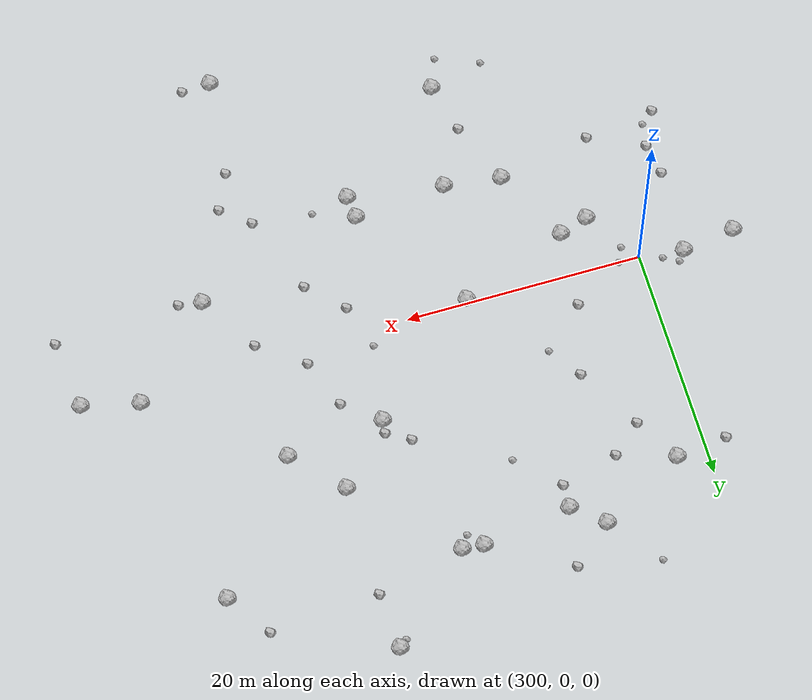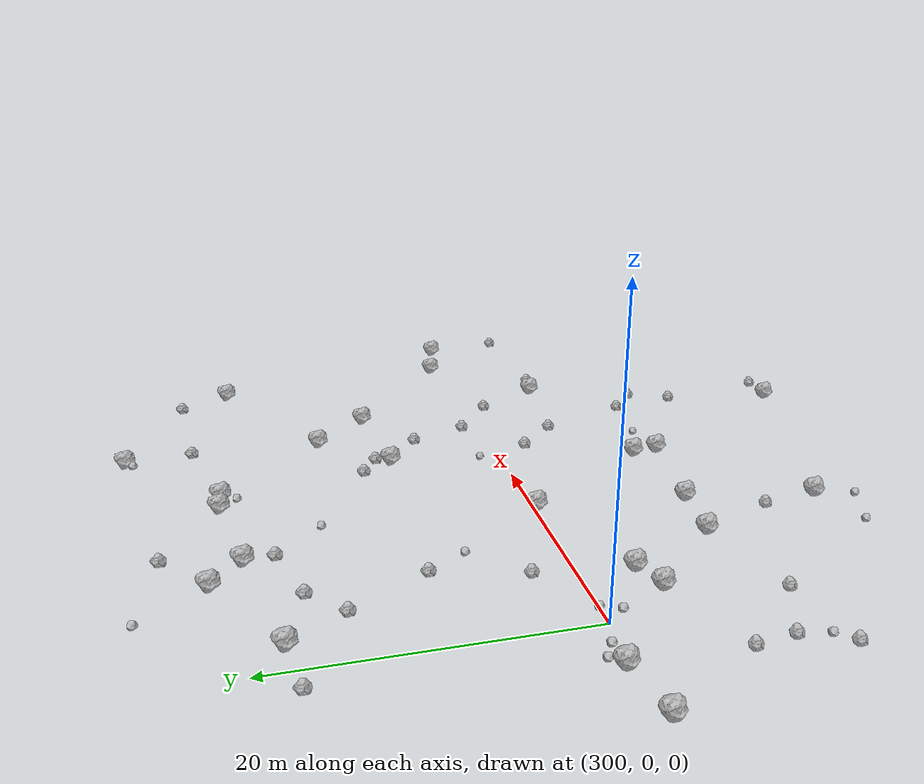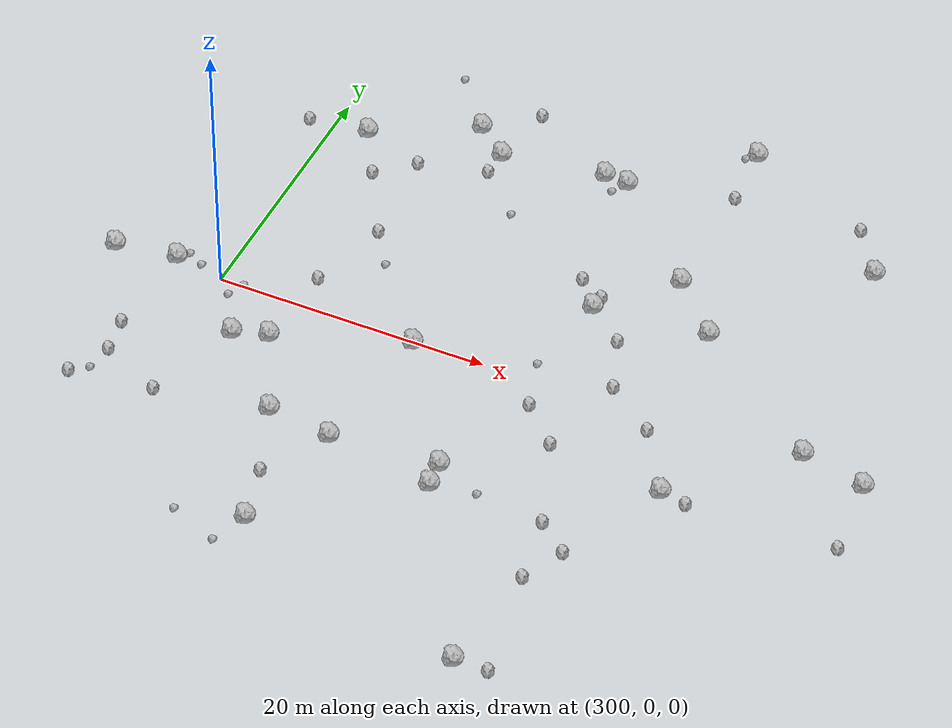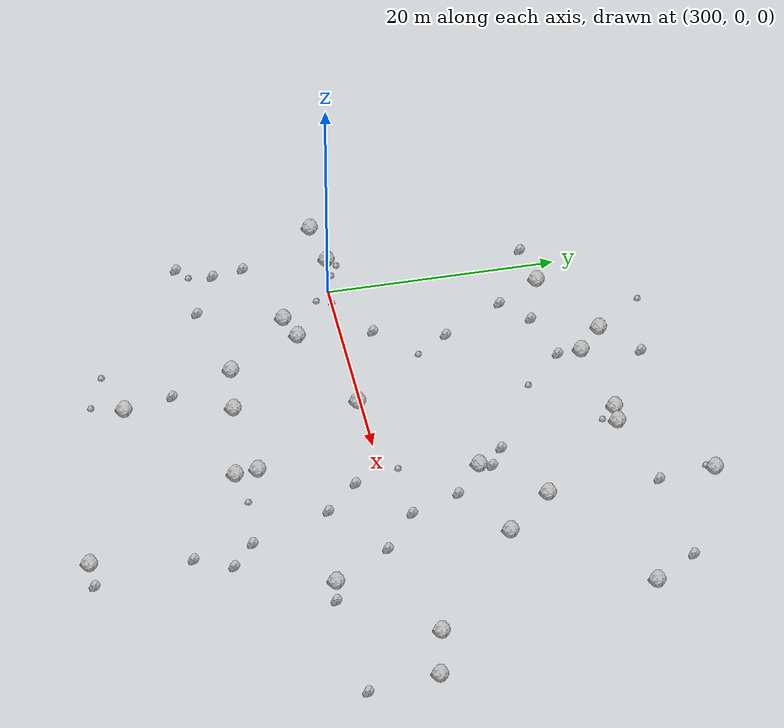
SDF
<sdf version="1.6">
 <world name="default">
  <include><uri>model://sun</uri></include>
  <model name="rock1_8_3">
   <include><uri>model://rock1</uri><pose>328.7525226697824 27.36543919483558 0.5 0 0 0</pose></include>
  </model>
  <model name="rock1_8_4">
   <include><uri>model://rock1</uri><pose>312.25760247349535 19.712532726271412 0.5 0 0 0</pose></include>
  </model>
  <model name="rock1_8_5">
   <include><uri>model://rock1</uri><pose>313.69099243472454 -10.778177490043227 0.5 0 0 0</pose></include>
  </model>
  <model name="rock1_8_6">
   <include><uri>model://rock1</uri><pose>312.0554073598567 -19.862074830195898 0.5 0 0 0</pose></include>
  </model>
  <model name="rock1_8_7">
   <include><uri>model://rock1</uri><pose>309.72758866656113 21.847978776242122 0.5 0 0 0</pose></include>
  </model>
  <model name="rock1_8_8">
   <include><uri>model://rock1</uri><pose>302.5555221199482 17.961124502089312 0.5 0 0 0</pose></include>
  </model>
  <model name="rock1_8_9">
   <include><uri>model://rock1</uri><pose>308.90105733723726 -10.148130658853912 0.5 0 0 0</pose></include>
  </model>
  <model name="rock1_8_10">
   <include><uri>model://rock1</uri><pose>296.32720305272375 0.5320159450699045 0.5 0 0 0</pose></include>
  </model>
  <model name="rock1_8_11">
   <include><uri>model://rock1</uri><pose>303.20617330317515 -4.579489714088471 0.5 0 0 0</pose></include>
  </model>
  <model name="rock1_8_12">
   <include><uri>model://rock1</uri><pose>321.5282426853377 -10.080829302104124 0.5 0 0 0</pose></include>
  </model>
  <model name="rock1_8_13">
   <include><uri>model://rock1</uri><pose>332.8186931897638 9.019796972079114 0.5 0 0 0</pose></include>
  </model>
  <model name="rock1_8_14">
   <include><uri>model://rock1</uri><pose>335.8567266483514 -6.164544657235812 0.5 0 0 0</pose></include>
  </model>
  <model name="rock1_8_15">
   <include><uri>model://rock1</uri><pose>324.55335692456674 8.136058763006474 0.5 0 0 0</pose></include>
  </model>
  <model name="rock1_8_16">
   <include><uri>model://rock1</uri><pose>340.82564656305397 19.477353215208375 0.5 0 0 0</pose></include>
  </model>
  <model name="rock1_8_17">
   <include><uri>model://rock1</uri><pose>329.030962278498 13.035003566273154 0.5 0 0 0</pose></include>
  </model>
  <model name="rock1_8_18">
   <include><uri>model://rock1</uri><pose>347.8215193920061 -0.029096699597133124 0.5 0 0 0</pose></include>
  </model>
  <model name="rock1_8_19">
   <include><uri>model://rock1</uri><pose>291.8323569573878 -0.11460120459746648 0.5 0 0 0</pose></include>
  </model>
  <model name="rock1_8_20">
   <include><uri>model://rock1</uri><pose>319.7869564993545 20.875195371004317 0.5 0 0 0</pose></include>
  </model>
  <model name="rock1_8_21">
   <include><uri>model://rock1</uri><pose>321.5859692984612 20.707019518493716 0.5 0 0 0</pose></include>
  </model>
  <model name="rock1_8_22">
   <include><uri>model://rock1</uri><pose>321.7264414879698 -12.026805740930332 0.5 0 0 0</pose></include>
  </model>
  <model name="rock1_8_23">
   <include><uri>model://rock1</uri><pose>329.8687326442555 -25.52872355941207 0.5 0 0 0</pose></include>
  </model>
  <model name="rock1_8_24">
   <include><uri>model://rock1</uri><pose>314.8733536846659 -0.2888144228845455 0.5 0 0 0</pose></include>
  </model>
  <model name="rock1_8_25">
   <include><uri>model://rock1</uri><pose>305.6555304930693 -3.785182647929325 0.5 0 0 0</pose></include>
  </model>
  <model name="rock1_8_26">
   <include><uri>model://rock1</uri><pose>343.0527776972884 1.093373389161755 0.5 0 0 0</pose></include>
  </model>
  <model name="rock2_8_0">
   <include><uri>model://rock2</uri><pose>327.4078872873129 -5.184535980582897 0.3 0 0 0</pose></include>
  </model>
  <model name="rock2_8_1">
   <include><uri>model://rock2</uri><pose>329.0179750653407 1.5618313858891995 0.3 0 0 0</pose></include>
  </model>
  <model name="rock2_8_2">
   <include><uri>model://rock2</uri><pose>298.18817189460236 17.44298692422013 0.3 0 0 0</pose></include>
  </model>
  <model name="rock2_8_3">
   <include><uri>model://rock2</uri><pose>312.14395094486605 17.70781077478012 0.3 0 0 0</pose></include>
  </model>
  <model name="rock2_8_4">
   <include><uri>model://rock2</uri><pose>306.1665352396996 2.740033179428657 0.3 0 0 0</pose></include>
  </model>
  <model name="rock2_8_5">
   <include><uri>model://rock2</uri><pose>296.3494479222065 -9.577291360956927 0.3 0 0 0</pose></include>
  </model>
  <model name="rock2_8_6">
   <include><uri>model://rock2</uri><pose>294.8845925329541 -12.583056762140906 0.3 0 0 0</pose></include>
  </model>
  <model name="rock2_8_7">
   <include><uri>model://rock2</uri><pose>310.9925277488928 -15.554960067135891 0.3 0 0 0</pose></include>
  </model>
  <model name="rock2_8_8">
   <include><uri>model://rock2</uri><pose>304.7482340472594 14.190524109922826 0.3 0 0 0</pose></include>
  </model>
  <model name="rock2_8_9">
   <include><uri>model://rock2</uri><pose>337.8038661913422 -6.5026093632436925 0.3 0 0 0</pose></include>
  </model>
  <model name="rock2_8_10">
   <include><uri>model://rock2</uri><pose>313.1244232089582 24.771485840809937 0.3 0 0 0</pose></include>
  </model>
  <model name="rock2_8_11">
   <include><uri>model://rock2</uri><pose>295.8928224390083 -6.839121652693205 0.3 0 0 0</pose></include>
  </model>
  <model name="rock2_8_12">
   <include><uri>model://rock2</uri><pose>330.84544231092883 -17.054568996156892 0.3 0 0 0</pose></include>
  </model>
  <model name="rock2_8_13">
   <include><uri>model://rock2</uri><pose>307.2607626561434 16.413910125439287 0.3 0 0 0</pose></include>
  </model>
  <model name="rock2_8_14">
   <include><uri>model://rock2</uri><pose>324.68130943429134 9.268361980006105 0.3 0 0 0</pose></include>
  </model>
  <model name="rock2_8_15">
   <include><uri>model://rock2</uri><pose>327.4547260197089 5.765989458536637 0.3 0 0 0</pose></include>
  </model>
  <model name="rock2_8_16">
   <include><uri>model://rock2</uri><pose>332.3144130180588 -25.452777886865743 0.3 0 0 0</pose></include>
  </model>
  <model name="rock2_8_17">
   <include><uri>model://rock2</uri><pose>332.29670530044655 -13.933113309456221 0.3 0 0 0</pose></include>
  </model>
  <model name="rock2_8_18">
   <include><uri>model://rock2</uri><pose>338.30077372416656 23.192580377711216 0.3 0 0 0</pose></include>
  </model>
  <model name="rock2_8_19">
   <include><uri>model://rock2</uri><pose>332.7443878669386 -1.2278851293125044 0.3 0 0 0</pose></include>
  </model>
  <model name="rock2_8_20">
   <include><uri>model://rock2</uri><pose>348.4168421607831 -5.963558367130876 0.3 0 0 0</pose></include>
  </model>
  <model name="rock2_8_21">
   <include><uri>model://rock2</uri><pose>329.9539680757888 -11.997547243515008 0.3 0 0 0</pose></include>
  </model>
  <model name="rock2_8_22">
   <include><uri>model://rock2</uri><pose>307.8547163568292 8.799474434442672 0.3 0 0 0</pose></include>
  </model>
  <model name="rock2_8_23">
   <include><uri>model://rock2</uri><pose>322.74818839347057 10.436216612547383 0.3 0 0 0</pose></include>
  </model>
  <model name="rock2_8_24">
   <include><uri>model://rock2</uri><pose>329.0464479432485 22.545141509761777 0.3 0 0 0</pose></include>
  </model>
  <model name="rock2_8_25">
   <include><uri>model://rock2</uri><pose>300.9150718834698 -11.717904171419406 0.3 0 0 0</pose></include>
  </model>
  <model name="rock2_8_26">
   <include><uri>model://rock2</uri><pose>324.5754543367765 -2.3590861687436018 0.3 0 0 0</pose></include>
  </model>
  <model name="rock3_8_0">
   <include><uri>model://rock3</uri><pose>309.69553527076494 6.018996052902068 0.2 0 0 0</pose></include>
  </model>
  <model name="rock3_8_1">
   <include><uri>model://rock3</uri><pose>301.7372483900431 -0.013374931742671237 0.2 0 0 0</pose></include>
  </model>
  <model name="rock3_8_2">
   <include><uri>model://rock3</uri><pose>306.3310421614956 26.093679241968076 0.2 0 0 0</pose></include>
  </model>
  <model name="rock3_8_3">
   <include><uri>model://rock3</uri><pose>298.1373043761836 0.6042173045650081 0.2 0 0 0</pose></include>
  </model>
  <model name="rock3_8_4">
   <include><uri>model://rock3</uri><pose>296.89329048761135 1.29266010660794 0.2 0 0 0</pose></include>
  </model>
  <model name="rock3_8_5">
   <include><uri>model://rock3</uri><pose>307.35996307802657 -21.084499266884336 0.2 0 0 0</pose></include>
  </model>
  <model name="rock3_8_6">
   <include><uri>model://rock3</uri><pose>301.17450586342983 -1.271032412931664 0.2 0 0 0</pose></include>
  </model>
  <model name="rock3_8_7">
   <include><uri>model://rock3</uri><pose>320.80890495707894 19.59473989726861 0.2 0 0 0</pose></include>
  </model>
  <model name="rock3_8_8">
   <include><uri>model://rock3</uri><pose>324.9031209126796 -11.469683531768048 0.2 0 0 0</pose></include>
  </model>
  <model name="rock3_8_9">
   <include><uri>model://rock3</uri><pose>315.3980496736008 14.396187745612792 0.2 0 0 0</pose></include>
  </model>
  <model name="rock3_8_10">
   <include><uri>model://rock3</uri><pose>323.355560309658 1.485940236565714 0.2 0 0 0</pose></include>
  </model>
  <model name="rock3_8_11">
   <include><uri>model://rock3</uri><pose>295.9828765996618 -11.65993643744076 0.2 0 0 0</pose></include>
  </model>
  <model name="rock3_8_12">
   <include><uri>model://rock3</uri><pose>328.0284534715253 26.7699600162002 0.2 0 0 0</pose></include>
  </model>
  <model name="rock3_8_13">
   <include><uri>model://rock3</uri><pose>310.97040329304053 -22.52990390171366 0.2 0 0 0</pose></include>
  </model>
 </world>
</sdf>
